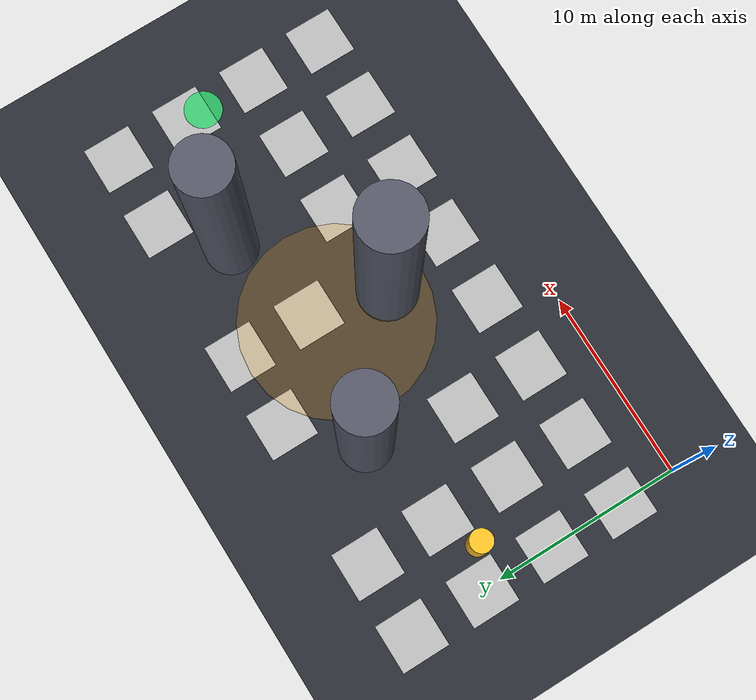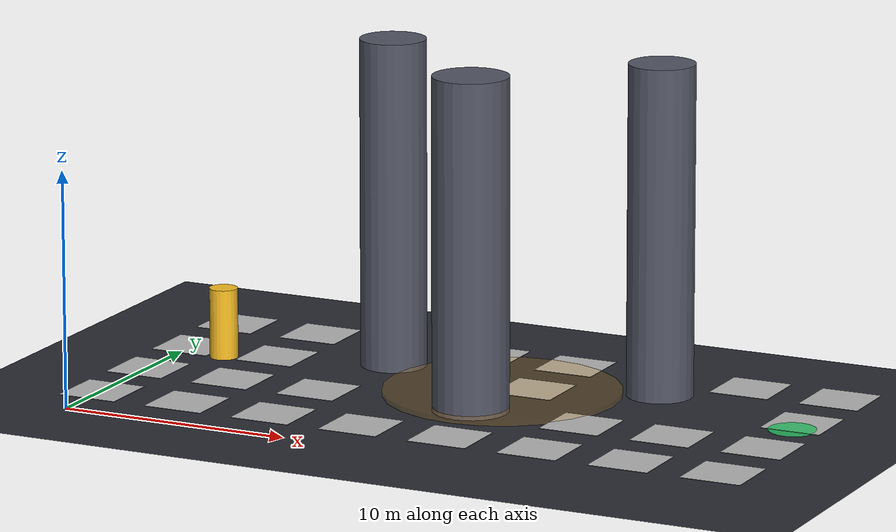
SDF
<?xml version="1.0" ?>
<!-- GENERATED by tools/gen_maps.py -- do not edit by hand. -->
<sdf version="1.6">
  <world name="real">
    <gravity>0 0 -9.81</gravity>
    <scene><ambient>0.5 0.52 0.55 1</ambient><background>0.62 0.66 0.72 1</background><shadows>true</shadows>
      <fog><color>0.62 0.66 0.72 1</color><type>linear</type><start>16</start><end>90</end><density>0.015</density></fog></scene>
    <light name="sun" type="directional"><cast_shadows>true</cast_shadows><pose>0 0 40 0 0 0</pose>
      <diffuse>0.9 0.9 0.9 1</diffuse><specular>0.2 0.2 0.2 1</specular><direction>-0.4 0.3 -0.9</direction></light>
    <model name="ground"><static>true</static><link name="link">
      <collision name="c"><geometry><plane><normal>0 0 1</normal><size>400 400</size></plane></geometry></collision>
      <visual name="v"><geometry><plane><normal>0 0 1</normal><size>400 400</size></plane></geometry>
      <material><ambient>0.16 0.17 0.2</ambient><diffuse>0.16 0.17 0.2</diffuse></material></visual></link></model>
    <model name="tower0"><static>true</static><pose>21.000 12.500 7.000 0 0 0</pose><link name="l"><collision name="c"><geometry><cylinder><radius>1.4</radius><length>14.0</length></cylinder></geometry></collision><visual name="v"><geometry><cylinder><radius>1.4</radius><length>14.0</length></cylinder></geometry><material><ambient>0.33 0.34 0.4 1</ambient><diffuse>0.33 0.34 0.4 1</diffuse></material></visual></link></model>
    <model name="tower1"><static>true</static><pose>15.000 7.000 7.000 0 0 0</pose><link name="l"><collision name="c"><geometry><cylinder><radius>1.6</radius><length>14.0</length></cylinder></geometry></collision><visual name="v"><geometry><cylinder><radius>1.6</radius><length>14.0</length></cylinder></geometry><material><ambient>0.33 0.34 0.4 1</ambient><diffuse>0.33 0.34 0.4 1</diffuse></material></visual></link></model>
    <model name="tower2"><static>true</static><pose>9.000 12.000 7.000 0 0 0</pose><link name="l"><collision name="c"><geometry><cylinder><radius>1.4</radius><length>14.0</length></cylinder></geometry></collision><visual name="v"><geometry><cylinder><radius>1.4</radius><length>14.0</length></cylinder></geometry><material><ambient>0.33 0.34 0.4 1</ambient><diffuse>0.33 0.34 0.4 1</diffuse></material></visual></link></model>
    <model name="hard_patch"><static>true</static><pose>15.000 10.000 0.03 0 0 0</pose><link name="l"><visual name="v"><geometry><cylinder><radius>5.0</radius><length>0.3</length></cylinder></geometry><material><ambient>0.96 0.62 0.04 0.2</ambient><diffuse>0.96 0.62 0.04 0.2</diffuse></material></visual></link></model>
    <model name="aruco0"><static>true</static><pose>0.000 3.000 0.02 0 0 0</pose><link name="l"><visual name="v"><geometry><box><size>2.6 2.6 0.02</size></box></geometry><material><script><uri>file://materials/scripts</uri><uri>file://materials/textures</uri><name>aruco/0</name></script></material></visual></link></model>
    <model name="aruco1"><static>true</static><pose>0.000 7.000 0.02 0 0 0</pose><link name="l"><visual name="v"><geometry><box><size>2.6 2.6 0.02</size></box></geometry><material><script><uri>file://materials/scripts</uri><uri>file://materials/textures</uri><name>aruco/1</name></script></material></visual></link></model>
    <model name="aruco2"><static>true</static><pose>0.000 11.000 0.02 0 0 0</pose><link name="l"><visual name="v"><geometry><box><size>2.6 2.6 0.02</size></box></geometry><material><script><uri>file://materials/scripts</uri><uri>file://materials/textures</uri><name>aruco/2</name></script></material></visual></link></model>
    <model name="aruco3"><static>true</static><pose>0.000 15.000 0.02 0 0 0</pose><link name="l"><visual name="v"><geometry><box><size>2.6 2.6 0.02</size></box></geometry><material><script><uri>file://materials/scripts</uri><uri>file://materials/textures</uri><name>aruco/3</name></script></material></visual></link></model>
    <model name="aruco4"><static>true</static><pose>4.000 3.000 0.02 0 0 0</pose><link name="l"><visual name="v"><geometry><box><size>2.6 2.6 0.02</size></box></geometry><material><script><uri>file://materials/scripts</uri><uri>file://materials/textures</uri><name>aruco/4</name></script></material></visual></link></model>
    <model name="aruco5"><static>true</static><pose>4.000 7.000 0.02 0 0 0</pose><link name="l"><visual name="v"><geometry><box><size>2.6 2.6 0.02</size></box></geometry><material><script><uri>file://materials/scripts</uri><uri>file://materials/textures</uri><name>aruco/5</name></script></material></visual></link></model>
    <model name="aruco6"><static>true</static><pose>4.000 11.000 0.02 0 0 0</pose><link name="l"><visual name="v"><geometry><box><size>2.6 2.6 0.02</size></box></geometry><material><script><uri>file://materials/scripts</uri><uri>file://materials/textures</uri><name>aruco/6</name></script></material></visual></link></model>
    <model name="aruco7"><static>true</static><pose>4.000 15.000 0.02 0 0 0</pose><link name="l"><visual name="v"><geometry><box><size>2.6 2.6 0.02</size></box></geometry><material><script><uri>file://materials/scripts</uri><uri>file://materials/textures</uri><name>aruco/7</name></script></material></visual></link></model>
    <model name="aruco8"><static>true</static><pose>8.000 3.000 0.02 0 0 0</pose><link name="l"><visual name="v"><geometry><box><size>2.6 2.6 0.02</size></box></geometry><material><script><uri>file://materials/scripts</uri><uri>file://materials/textures</uri><name>aruco/8</name></script></material></visual></link></model>
    <model name="aruco9"><static>true</static><pose>8.000 7.000 0.02 0 0 0</pose><link name="l"><visual name="v"><geometry><box><size>2.6 2.6 0.02</size></box></geometry><material><script><uri>file://materials/scripts</uri><uri>file://materials/textures</uri><name>aruco/9</name></script></material></visual></link></model>
    <model name="aruco10"><static>true</static><pose>12.000 3.000 0.02 0 0 0</pose><link name="l"><visual name="v"><geometry><box><size>2.6 2.6 0.02</size></box></geometry><material><script><uri>file://materials/scripts</uri><uri>file://materials/textures</uri><name>aruco/10</name></script></material></visual></link></model>
    <model name="aruco11"><static>true</static><pose>12.000 15.000 0.02 0 0 0</pose><link name="l"><visual name="v"><geometry><box><size>2.6 2.6 0.02</size></box></geometry><material><script><uri>file://materials/scripts</uri><uri>file://materials/textures</uri><name>aruco/11</name></script></material></visual></link></model>
    <model name="aruco12"><static>true</static><pose>16.000 3.000 0.02 0 0 0</pose><link name="l"><visual name="v"><geometry><box><size>2.6 2.6 0.02</size></box></geometry><material><script><uri>file://materials/scripts</uri><uri>file://materials/textures</uri><name>aruco/12</name></script></material></visual></link></model>
    <model name="aruco13"><static>true</static><pose>16.000 11.000 0.02 0 0 0</pose><link name="l"><visual name="v"><geometry><box><size>2.6 2.6 0.02</size></box></geometry><material><script><uri>file://materials/scripts</uri><uri>file://materials/textures</uri><name>aruco/13</name></script></material></visual></link></model>
    <model name="aruco14"><static>true</static><pose>16.000 15.000 0.02 0 0 0</pose><link name="l"><visual name="v"><geometry><box><size>2.6 2.6 0.02</size></box></geometry><material><script><uri>file://materials/scripts</uri><uri>file://materials/textures</uri><name>aruco/14</name></script></material></visual></link></model>
    <model name="aruco15"><static>true</static><pose>20.000 3.000 0.02 0 0 0</pose><link name="l"><visual name="v"><geometry><box><size>2.6 2.6 0.02</size></box></geometry><material><script><uri>file://materials/scripts</uri><uri>file://materials/textures</uri><name>aruco/15</name></script></material></visual></link></model>
    <model name="aruco16"><static>true</static><pose>20.000 7.000 0.02 0 0 0</pose><link name="l"><visual name="v"><geometry><box><size>2.6 2.6 0.02</size></box></geometry><material><script><uri>file://materials/scripts</uri><uri>file://materials/textures</uri><name>aruco/16</name></script></material></visual></link></model>
    <model name="aruco17"><static>true</static><pose>24.000 3.000 0.02 0 0 0</pose><link name="l"><visual name="v"><geometry><box><size>2.6 2.6 0.02</size></box></geometry><material><script><uri>file://materials/scripts</uri><uri>file://materials/textures</uri><name>aruco/17</name></script></material></visual></link></model>
    <model name="aruco18"><static>true</static><pose>24.000 7.000 0.02 0 0 0</pose><link name="l"><visual name="v"><geometry><box><size>2.6 2.6 0.02</size></box></geometry><material><script><uri>file://materials/scripts</uri><uri>file://materials/textures</uri><name>aruco/18</name></script></material></visual></link></model>
    <model name="aruco19"><static>true</static><pose>24.000 15.000 0.02 0 0 0</pose><link name="l"><visual name="v"><geometry><box><size>2.6 2.6 0.02</size></box></geometry><material><script><uri>file://materials/scripts</uri><uri>file://materials/textures</uri><name>aruco/19</name></script></material></visual></link></model>
    <model name="aruco20"><static>true</static><pose>28.000 3.000 0.02 0 0 0</pose><link name="l"><visual name="v"><geometry><box><size>2.6 2.6 0.02</size></box></geometry><material><script><uri>file://materials/scripts</uri><uri>file://materials/textures</uri><name>aruco/20</name></script></material></visual></link></model>
    <model name="aruco21"><static>true</static><pose>28.000 7.000 0.02 0 0 0</pose><link name="l"><visual name="v"><geometry><box><size>2.6 2.6 0.02</size></box></geometry><material><script><uri>file://materials/scripts</uri><uri>file://materials/textures</uri><name>aruco/21</name></script></material></visual></link></model>
    <model name="aruco22"><static>true</static><pose>28.000 11.000 0.02 0 0 0</pose><link name="l"><visual name="v"><geometry><box><size>2.6 2.6 0.02</size></box></geometry><material><script><uri>file://materials/scripts</uri><uri>file://materials/textures</uri><name>aruco/22</name></script></material></visual></link></model>
    <model name="aruco23"><static>true</static><pose>28.000 15.000 0.02 0 0 0</pose><link name="l"><visual name="v"><geometry><box><size>2.6 2.6 0.02</size></box></geometry><material><script><uri>file://materials/scripts</uri><uri>file://materials/textures</uri><name>aruco/23</name></script></material></visual></link></model>
    <model name="target_B"><static>true</static><pose>2.000 10.000 1.500 0 0 0</pose><link name="l"><collision name="c"><geometry><cylinder><radius>0.6</radius><length>3.0</length></cylinder></geometry></collision><visual name="v"><geometry><cylinder><radius>0.6</radius><length>3.0</length></cylinder></geometry><material><ambient>0.98 0.75 0.14 1</ambient><diffuse>0.98 0.75 0.14 1</diffuse></material></visual></link></model>
    <model name="start_pad"><static>true</static><pose>28.000 10.000 0.020 0 0 0</pose><link name="l"><collision name="c"><geometry><cylinder><radius>1.0</radius><length>0.04</length></cylinder></geometry></collision><visual name="v"><geometry><cylinder><radius>1.0</radius><length>0.04</length></cylinder></geometry><material><ambient>0.2 0.83 0.44 0.85</ambient><diffuse>0.2 0.83 0.44 0.85</diffuse></material></visual></link></model>
    <plugin name="gazebo_ros_state" filename="libgazebo_ros_state.so"><ros><namespace>/gazebo</namespace></ros><update_rate>0.0</update_rate></plugin>
    <physics name="ode" type="ode"><max_step_size>0.004</max_step_size><real_time_update_rate>250</real_time_update_rate></physics>
  </world>
</sdf>
